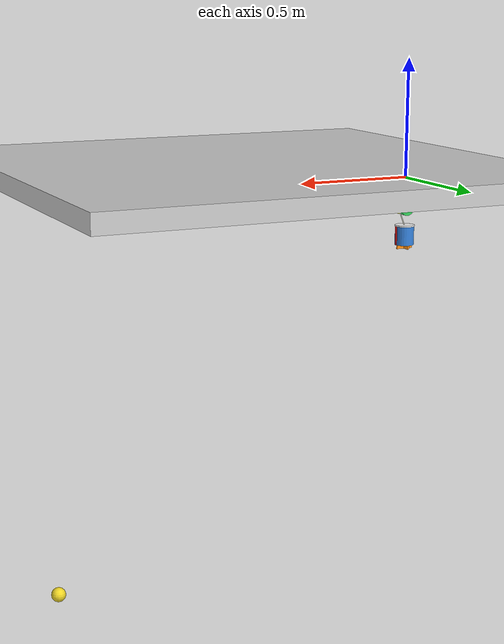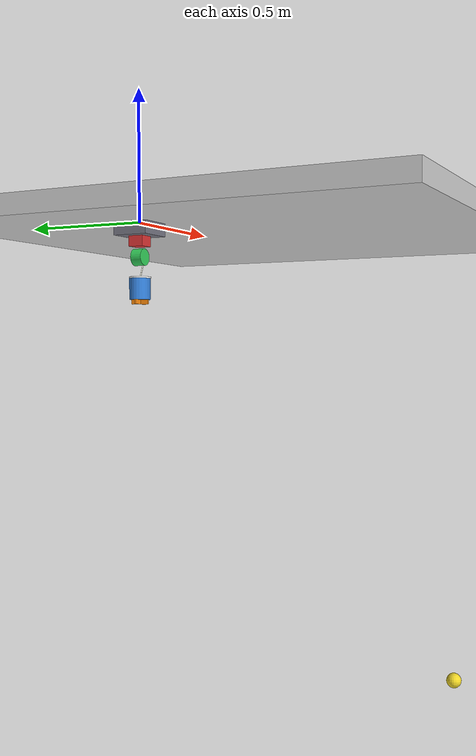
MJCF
<mujoco model="chameleon">

    <compiler angle="degree" coordinate="local" inertiafromgeom="auto"/>
    <!--Gravity goes the "wrong" way, in order to comply with Z-down positive coordinate system of group-->
    <option gravity="0 0 -9.81" timestep="0.002" integrator="RK4"/>
    <size njmax="200" nconmax="100"/>

    <visual>
        <!--Change this if the camera light is too bright-->
        <headlight diffuse="0.7 0.7 0.7" ambient="0.6 0.6 0.6" specular="0.3 0.3 0.3"/>
        <map znear="0.02"/>
        <quality shadowsize="2048"/>
    </visual>

    <asset>
        <!--Stuff for the floor-->
        <texture name="grid_tex" type="2d" builtin="checker" rgb1="0.8 0.8 0.8" rgb2="0.6 0.6 0.6" width="512" height="512"/>
        <material name="grid_mat" texture="grid_tex" texrepeat="20 20" reflectance="0.1" rgba="1 1 1 1"/>
        <texture name="sky" type="skybox" builtin="gradient" rgb1="0.4 0.65 0.9" rgb2="0.9 0.95 1.0" width="256" height="256"/>
    </asset>

    <worldbody>
        <camera name="default_view" pos="0 -4 1.5" xyaxes="-1 0 0 0 0 1"/>
        <!--General Setup, ceiling and floor 3 meters apart, as will be established in report, also make it daylight-->
        <light name="sun" directional="true" castshadow="true" pos="0 0 10" dir="0.5 0.5 1" diffuse="0.95 0.95 0.9" specular="0.3 0.3 0.3"/>
        <geom name="floor" type="plane" pos="0 0 -3" size="8 8 0.1" material="grid_mat"/>
        <geom name="ceiling" type="box" pos="0 0 0.04" size="4 4 0.04" rgba="0.8 0.8 0.8 1"/>

        <!--Ceiling Dock and Active Tension Spool-->

        <!--Will be free to turn horizontally and also like a spool, so problem stays 2D-->
        <body name="dock" pos="0 0 -0.025">

        <!--FIX VALUES when we have found one online or made one in CATIA-->
            <geom name="dock_geom" type="box" size="0.07 0.07 0.025" rgba="0.45 0.45 0.50 1" mass="2.0"/>

            <!--FIX VALUES here as well for size mass-->
            <body name="swivel_bracket" pos="0 0 -0.045">

            <!--CHECK HERE: armature adds inertia, should prevent numerical instability, have a look whether its physically correct though-->
            <!--Basically we need to back up damping and armature values-->
                <joint name="swivel_yaw" type="hinge" axis="0 0 1" damping="0.02" armature="0.01"/>
                <geom name="bracket_geom" type="box" size="0.03 0.03 0.02" rgba="0.85 0.20 0.20 1" mass="0.15"/>

                <!--FIX VALUES here as well for size mass-->
                <!--8 mm offset for spool drum-->
                <body name="spool_drum" pos="0 0 -0.06">
                    <joint name="spool_roll" type="hinge" axis="0 1 0" damping="0.02" armature="0.01"/>
                    <geom name="drum_geom" type="cylinder" size="0.032 0.022" euler="90 0 0" rgba="0.20 0.80 0.35 1" mass="0.30"/>

                    <geom name="drum_mark" type="box" pos="0.030 0 0" size="0.005 0.023 0.004" euler="90 0 0" rgba="0.95 0.95 0.10 1" mass="0.001"/>
                </body>
                <!-- Tether anchor: visually at point where tether leaves spool, but attached in simulation to bracket, so it does not turn around y with spool -->
                    <site name="tether_anchor" pos="0.032 0 -0.06" size="0.005" rgba="1 1 0 1"/>
            </body>
        </body>

        <!--Chameleon Drone-->
        <!--Right now it starts right below the dock, reconsider this when we know docking infra-->
        <body name="drone" pos="0 0 -0.25">
            <freejoint name="drone_free"/>
            <!--UPDATE THIS ENTIRE PART WHEN SIZING IS IN-->
            <!--Hollow-Cylinder Inertia (m=0.143, R= 0.0405, r=0.029, h=0.08)-->
            <inertial pos="0 0 0" mass="0.143" diaginertia="0.000189 0.000189 0.000226"/>
            <!--Duct Wall-->
            <geom name="duct_geom" type="cylinder" size="0.0405 0.04" rgba="0.20 0.50 0.85 1"/>
            <!--Counter-Rotating propeller disc, only for visual, deleted if we have CAD model-->
            <geom name="prop_geom" type="cylinder" size="0.036 0.004" pos="0 0 -0.01" rgba="0.15 0.15 0.18 1" mass="0.0" contype="0" conaffinity="0"/>
            <!-- Thrust-vectoring vanes below the duct — orange so they read clearly. -->
            <geom name="vane_x" type="box" size="0.036 0.003 0.012" pos="0 0 -0.045" rgba="1.0 0.55 0.05 1" mass="0.0" contype="0" conaffinity="0"/>
            <geom name="vane_y" type="box" size="0.003 0.036 0.012" pos="0 0 -0.045" rgba="1.0 0.55 0.05 1" mass="0.0" contype="0" conaffinity="0"/>
            <!-- Red nose stripe on the +X face: shows body orientation in the XY plane. -->
            <geom name="nose" type="box" size="0.002 0.006 0.04" pos="0.040 0 0" rgba="0.95 0.10 0.10 1" mass="0.0" contype="0" conaffinity="0"/>
            <!-- Top cap: bright white ring marks the tether-attachment side (up). -->
            <geom name="top_cap" type="cylinder" size="0.042 0.003" pos="0 0 0.043" rgba="0.95 0.95 0.95 1" mass="0.0" contype="0" conaffinity="0"/>
            <!-- Tether attaches on TOP (faces up toward the ceiling dock). -->
            <site name="drone_mount" pos="0 0 0.04" size="0.006" rgba="1.0 0.3 0.0 1"/>
            <site name="imu" pos="0 0 0" size="0.004" rgba="0 0 0 0"/>
        </body>

        <!--Moth (does nothing but nice for our simulation (if it works :))-->
        <body name="moth" mocap="true" pos="1.334 -0.87 -2.029">
            <geom name="moth_geom" type="sphere" size="0.035" rgba="0.95 0.85 0.15 1" contype="0" conaffinity="0"/>
        </body>
    </worldbody>

    <!--Tether, negative values are such that we bypass time constant-->
    <!--K and B need UPDATE-->
    <tendon>
        <spatial name="tether" width="0.0022" rgba="0.95 0.95 0.88 1" limited="true" range="0 1.5" solreflimit="-5000 -15" solimplimit="0.95 0.99 0.001">
            <site site="tether_anchor"/>
            <site site="drone_mount"/>
        </spatial>
    </tendon>

    <!--Here the motor for active spooling and reeling, and also the brakes in this block-->
    <!--UPDATE WITH REAL MOTOR VALUES-->
    <actuator>
        <motor name="reel_motor" joint="spool_roll" gear="1" ctrlrange="-10 10"/>
        <damper name="friction_brake" joint="spool_roll" kv="5" ctrlrange="0 5"/>
    </actuator>

    <!--Sensors which are necessary for the python code-->
    <sensor>
        <jointpos      name="spool_angle" joint="spool_roll"/>
        <jointvel      name="spool_omega" joint="spool_roll"/>
        <accelerometer name="drone_acc"   site="imu"/>
        <force         name="mount_force" site="drone_mount"/>
    </sensor>

</mujoco>
